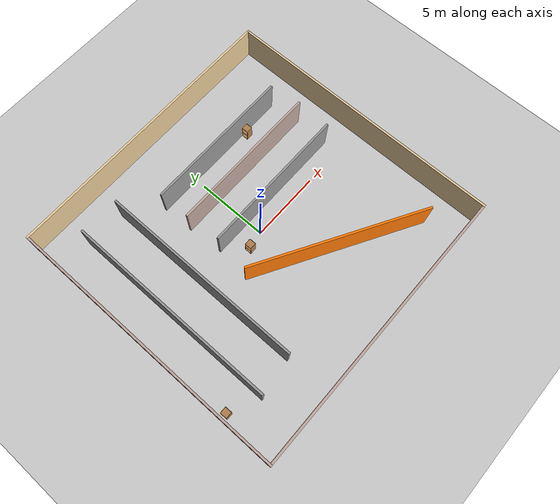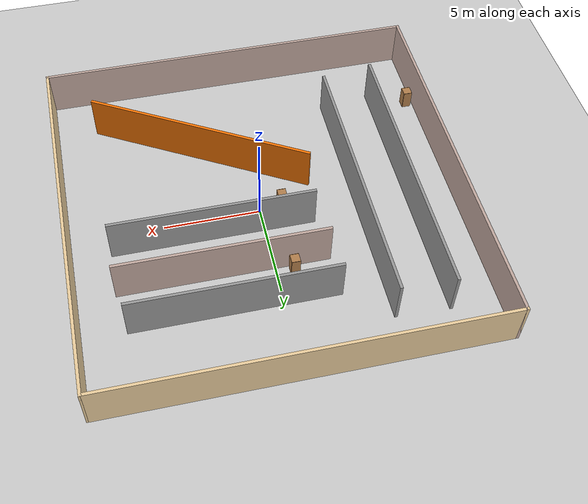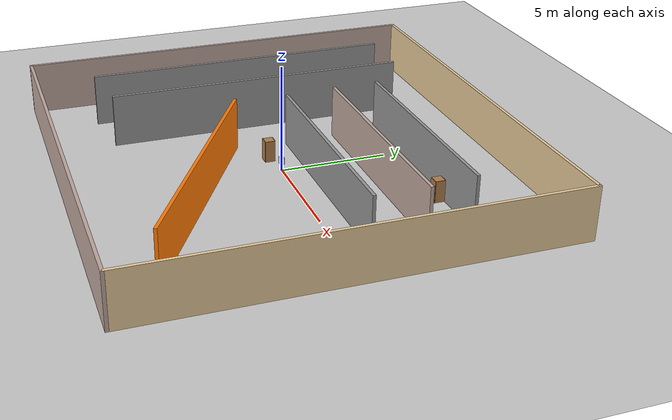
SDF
<sdf version="1.6">
 <world name="default">
  <light name="sun" type="directional">
   <pose>0 0 10 0 -0 0</pose>
   <diffuse>0.8 0.8 0.8 1</diffuse>
   <specular>0.2 0.2 0.2 1</specular>
   <attenuation>
    <range>1000</range>
    <constant>0.9</constant>
    <linear>0.01</linear>
    <quadratic>0.001</quadratic>
   </attenuation>
   <direction>-0.5 0.1 -0.9</direction>
  </light>
  <model name="animated_box">
   <pose>0 0 0.5 0 0 0</pose>
   <link name="link">
    <collision name="animated_box_collision"><geometry><box><size>0.2 0.1 0.3</size></box></geometry></collision>
    <visual name="visual"><geometry><box><size>0.2 0.1 0.3</size></box></geometry></visual>
    <inertial>
     <inertia><ixx>1</ixx><ixy>0</ixy><ixz>0</ixz><iyy>1</iyy><iyz>0</iyz><izz>1</izz></inertia>
     <mass>1</mass>
    </inertial>
    <gravity>0</gravity>
   </link>
   <plugin name="push_animate" filename="libbox_forward_movement12.so"/>
  </model>
  <model name="animated_cylinder">
   <pose>0 0 0.5 0 0 0</pose>
   <link name="link">
    <collision name="animated_cylinder_collision">
     <geometry><cylinder><radius>0.1</radius><length>0.3</length></cylinder></geometry>
    </collision>
    <visual name="visual">
     <geometry><cylinder><radius>0.1</radius><length>0.3</length></cylinder></geometry>
    </visual>
    <inertial>
     <inertia><ixx>1</ixx><ixy>0</ixy><ixz>0</ixz><iyy>1</iyy><iyz>0</iyz><izz>1</izz></inertia>
     <mass>1</mass>
    </inertial>
    <gravity>0</gravity>
   </link>
   <plugin name="push_animate2" filename="libbox_forward_movement16.so"/>
  </model>
  <model name="animated_box2">
   <pose>0 0 0.5 0 0 0</pose>
   <link name="link">
    <collision name="animated_box_collision2"><geometry><box><size>0.2 0.2 0.3</size></box></geometry></collision>
    <visual name="visual"><geometry><box><size>0.2 0.2 0.3</size></box></geometry></visual>
    <inertial>
     <inertia><ixx>1</ixx><ixy>0</ixy><ixz>0</ixz><iyy>1</iyy><iyz>0</iyz><izz>1</izz></inertia>
     <mass>1</mass>
    </inertial>
    <gravity>0</gravity>
   </link>
   <plugin name="push_animate" filename="libbox_clockwise_movement2.so"/>
  </model>
  <model name="animated_box3">
   <pose>0 0 0.5 0 0 0</pose>
   <link name="link">
    <collision name="animated_box_collision3"><geometry><box><size>0.3 0.2 0.3</size></box></geometry></collision>
    <visual name="visual"><geometry><box><size>0.3 0.2 0.3</size></box></geometry></visual>
    <inertial>
     <inertia><ixx>1</ixx><ixy>0</ixy><ixz>0</ixz><iyy>1</iyy><iyz>0</iyz><izz>1</izz></inertia>
     <mass>1</mass>
    </inertial>
    <gravity>0</gravity>
   </link>
   <plugin name="push_animate" filename="libbox_forward_movement17.so"/>
  </model>
  <model name="ground_plane">
   <static>1</static>
   <link name="link">
    <collision name="collision">
     <geometry><plane><normal>0 0 1</normal><size>100 100</size></plane></geometry>
     <surface><friction><ode><mu>100</mu><mu2>50</mu2></ode></friction></surface>
    </collision>
    <visual name="visual">
     <cast_shadows>0</cast_shadows>
     <geometry><plane><normal>0 0 1</normal><size>100 100</size></plane></geometry>
     <material>
      <script><uri>file://media/materials/scripts/gazebo.material</uri><name>Gazebo/Grey</name></script>
     </material>
    </visual>
   </link>
  </model>
  <gravity>0 0 -9.8</gravity>
  <magnetic_field>6e-06 2.3e-05 -4.2e-05</magnetic_field>
  <atmosphere type="adiabatic"/>
  <physics name="default_physics" default="0" type="ode">
   <max_step_size>0.001</max_step_size>
   <real_time_factor>1</real_time_factor>
   <real_time_update_rate>1000</real_time_update_rate>
  </physics>
  <scene><ambient>0.4 0.4 0.4 1</ambient><background>0.7 0.7 0.7 1</background><shadows>1</shadows></scene>
  <audio><device>default</device></audio>
  <spherical_coordinates>
   <surface_model>EARTH_WGS84</surface_model>
   <latitude_deg>0</latitude_deg>
   <longitude_deg>0</longitude_deg>
   <elevation>0</elevation>
   <heading_deg>0</heading_deg>
  </spherical_coordinates>
  <model name="room2">
   <pose>-0.19 0.05 0 0 -0 0</pose>
   <link name="Wall_0">
    <collision name="Wall_0_Collision">
     <geometry><box><size>19.75 0.15 2.5</size></box></geometry>
     <pose>0 0 1.25 0 -0 0</pose>
    </collision>
    <visual name="Wall_0_Visual">
     <pose>0 0 1.25 0 -0 0</pose>
     <geometry><box><size>19.75 0.15 2.5</size></box></geometry>
     <material>
      <script><uri>file://media/materials/scripts/gazebo.material</uri><name>Gazebo/Grey</name></script>
      <ambient>0.760784 0.662745 0.627451 1</ambient>
     </material>
     <meta><layer>0</layer></meta>
    </visual>
    <pose>-10.05 -0 0 0 -0 1.5708</pose>
   </link>
   <link name="Wall_11">
    <collision name="Wall_11_Collision">
     <geometry><box><size>10.5 0.15 2.5</size></box></geometry>
     <pose>0 0 1.25 0 -0 0</pose>
    </collision>
    <visual name="Wall_11_Visual">
     <pose>0 0 1.25 0 -0 0</pose>
     <geometry><box><size>10.5 0.15 2.5</size></box></geometry>
     <material>
      <script><uri>file://media/materials/scripts/gazebo.material</uri><name>Gazebo/Grey</name></script>
      <ambient>1 1 1 1</ambient>
     </material>
     <meta><layer>0</layer></meta>
    </visual>
    <pose>2.55683 5.70417 0 0 -0 0</pose>
   </link>
   <link name="Wall_13">
    <collision name="Wall_13_Collision">
     <geometry><box><size>10.75 0.15 2.5</size></box></geometry>
     <pose>0 0 1.25 0 -0 0</pose>
    </collision>
    <visual name="Wall_13_Visual">
     <pose>0 0 1.25 0 -0 0</pose>
     <geometry><box><size>10.75 0.15 2.5</size></box></geometry>
     <material>
      <script><uri>file://media/materials/scripts/gazebo.material</uri><name>Gazebo/Grey</name></script>
      <ambient>0.760784 0.662745 0.627451 1</ambient>
     </material>
     <meta><layer>0</layer></meta>
    </visual>
    <pose>2.7281 3.52989 0 0 -0 0</pose>
   </link>
   <link name="Wall_15">
    <collision name="Wall_15_Collision">
     <geometry><box><size>10.5 0.15 2.5</size></box></geometry>
     <pose>0 0 1.25 0 -0 0</pose>
    </collision>
    <visual name="Wall_15_Visual">
     <pose>0 0 1.25 0 -0 0</pose>
     <geometry><box><size>10.5 0.15 2.5</size></box></geometry>
     <material>
      <script><uri>file://media/materials/scripts/gazebo.material</uri><name>Gazebo/Grey</name></script>
      <ambient>1 1 1 1</ambient>
     </material>
     <meta><layer>0</layer></meta>
    </visual>
    <pose>2.78814 1.10118 0 0 -0 0</pose>
   </link>
   <link name="Wall_17">
    <collision name="Wall_17_Collision">
     <geometry><box><size>12.25 0.15 2.5</size></box></geometry>
     <pose>0 0 1.25 0 -0 0</pose>
    </collision>
    <visual name="Wall_17_Visual">
     <pose>0 0 1.25 0 -0 0</pose>
     <geometry><box><size>12.25 0.15 2.5</size></box></geometry>
     <material>
      <script><uri>file://media/materials/scripts/gazebo.material</uri><name>Gazebo/Grey</name></script>
      <ambient>0.996078 0.47451 0.0196078 1</ambient>
     </material>
     <meta><layer>0</layer></meta>
    </visual>
    <pose>2.5519 -4.3988 0 0 -0 -0.523599</pose>
   </link>
   <link name="Wall_2">
    <collision name="Wall_2_Collision">
     <geometry><box><size>20.25 0.15 2.5</size></box></geometry>
     <pose>0 0 1.25 0 -0 0</pose>
    </collision>
    <visual name="Wall_2_Visual">
     <pose>0 0 1.25 0 -0 0</pose>
     <geometry><box><size>20.25 0.15 2.5</size></box></geometry>
     <material>
      <script><uri>file://media/materials/scripts/gazebo.material</uri><name>Gazebo/Grey</name></script>
      <ambient>0.921569 0.807843 0.615686 1</ambient>
     </material>
     <meta><layer>0</layer></meta>
    </visual>
    <pose>0 9.8 0 0 -0 0</pose>
   </link>
   <link name="Wall_3">
    <collision name="Wall_3_Collision">
     <geometry><box><size>19.75 0.15 2.5</size></box></geometry>
     <pose>0 0 1.25 0 -0 0</pose>
    </collision>
    <visual name="Wall_3_Visual">
     <pose>0 0 1.25 0 -0 0</pose>
     <geometry><box><size>19.75 0.15 2.5</size></box></geometry>
     <material>
      <script><uri>file://media/materials/scripts/gazebo.material</uri><name>Gazebo/Grey</name></script>
      <ambient>0.921569 0.807843 0.615686 1</ambient>
     </material>
     <meta><layer>0</layer></meta>
    </visual>
    <pose>10.05 -0 0 0 -0 -1.5708</pose>
   </link>
   <link name="Wall_4">
    <collision name="Wall_4_Collision">
     <geometry><box><size>20.25 0.15 2.5</size></box></geometry>
     <pose>0 0 1.25 0 -0 0</pose>
    </collision>
    <visual name="Wall_4_Visual">
     <pose>0 0 1.25 0 -0 0</pose>
     <geometry><box><size>20.25 0.15 2.5</size></box></geometry>
     <material>
      <script><uri>file://media/materials/scripts/gazebo.material</uri><name>Gazebo/Grey</name></script>
      <ambient>0.760784 0.662745 0.627451 1</ambient>
     </material>
     <meta><layer>0</layer></meta>
    </visual>
    <pose>0 -9.8 0 0 -0 3.14159</pose>
   </link>
   <link name="Wall_6">
    <collision name="Wall_6_Collision">
     <geometry><box><size>14.75 0.15 2.5</size></box></geometry>
     <pose>0 0 1.25 0 -0 0</pose>
    </collision>
    <visual name="Wall_6_Visual">
     <pose>0 0 1.25 0 -0 0</pose>
     <geometry><box><size>14.75 0.15 2.5</size></box></geometry>
     <material>
      <script><uri>file://media/materials/scripts/gazebo.material</uri><name>Gazebo/Grey</name></script>
      <ambient>1 1 1 1</ambient>
     </material>
     <meta><layer>0</layer></meta>
    </visual>
    <pose>-7.56811 0.300879 0 0 -0 -1.5708</pose>
   </link>
   <link name="Wall_8">
    <collision name="Wall_8_Collision">
     <geometry><box><size>14.25 0.15 2.5</size></box></geometry>
     <pose>0 0 1.25 0 -0 0</pose>
    </collision>
    <visual name="Wall_8_Visual">
     <pose>0 0 1.25 0 -0 0</pose>
     <geometry><box><size>14.25 0.15 2.5</size></box></geometry>
     <material>
      <script><uri>file://media/materials/scripts/gazebo.material</uri><name>Gazebo/Grey</name></script>
      <ambient>1 1 1 1</ambient>
     </material>
     <meta><layer>0</layer></meta>
    </visual>
    <pose>-4.8387 0.435226 0 0 -0 -1.5708</pose>
   </link>
   <static>1</static>
  </model>
  <model name="cabinet">
   <static>1</static>
   <link name="cabinet_bottom_plate">
    <inertial>
     <pose>0 0 -1 0 -0 0</pose>
     <inertia><ixx>2.05</ixx><ixy>0</ixy><ixz>0</ixz><iyy>2.05</iyy><iyz>0</iyz><izz>2.05</izz></inertia>
     <mass>25</mass>
    </inertial>
    <collision name="cabinet_bottom_plate_geom">
     <pose>0 0 0.01 0 -0 0</pose>
     <geometry><box><size>0.45 0.45 0.02</size></box></geometry>
    </collision>
    <visual name="cabinet_bottom_plate_geom_visual">
     <pose>0 0 0.01 0 -0 0</pose>
     <geometry><box><size>0.45 0.45 0.02</size></box></geometry>
     <material>
      <script><uri>file://media/materials/scripts/gazebo.material</uri><name>Gazebo/Wood</name></script>
     </material>
    </visual>
    <collision name="cabinet_bottom_plate_geom_cabinet_back_plate">
     <pose>0.235 0 0.51 0 -0 0</pose>
     <geometry><box><size>0.02 0.45 1.02</size></box></geometry>
    </collision>
    <visual name="cabinet_bottom_plate_geom_cabinet_back_plate_visual">
     <pose>0.235 0 0.51 0 -0 0</pose>
     <geometry><box><size>0.02 0.45 1.02</size></box></geometry>
     <material>
      <script><uri>file://media/materials/scripts/gazebo.material</uri><name>Gazebo/Wood</name></script>
     </material>
    </visual>
    <collision name="cabinet_bottom_plate_geom_cabinet_left_plate">
     <pose>0 0.235 0.51 0 -0 0</pose>
     <geometry><box><size>0.45 0.02 1.02</size></box></geometry>
    </collision>
    <visual name="cabinet_bottom_plate_geom_cabinet_left_plate_visual">
     <pose>0 0.235 0.51 0 -0 0</pose>
     <geometry><box><size>0.45 0.02 1.02</size></box></geometry>
     <material>
      <script><uri>file://media/materials/scripts/gazebo.material</uri><name>Gazebo/Wood</name></script>
     </material>
    </visual>
    <collision name="cabinet_bottom_plate_geom_cabinet_middle_plate">
     <pose>0 0 0.51 0 -0 0</pose>
     <geometry><box><size>0.45 0.45 0.02</size></box></geometry>
    </collision>
    <visual name="cabinet_bottom_plate_geom_cabinet_middle_plate_visual">
     <pose>0 0 0.51 0 -0 0</pose>
     <geometry><box><size>0.45 0.45 0.02</size></box></geometry>
     <material>
      <script><uri>file://media/materials/scripts/gazebo.material</uri><name>Gazebo/Wood</name></script>
     </material>
    </visual>
    <collision name="cabinet_bottom_plate_geom_cabinet_right_plate">
     <pose>0 -0.235 0.51 0 -0 0</pose>
     <geometry><box><size>0.45 0.02 1.02</size></box></geometry>
    </collision>
    <visual name="cabinet_bottom_plate_geom_cabinet_right_plate_visual">
     <pose>0 -0.235 0.51 0 -0 0</pose>
     <geometry><box><size>0.45 0.02 1.02</size></box></geometry>
     <material>
      <script><uri>file://media/materials/scripts/gazebo.material</uri><name>Gazebo/Wood</name></script>
     </material>
    </visual>
    <collision name="cabinet_bottom_plate_geom_cabinet_top_plate">
     <pose>0 0 1.01 0 -0 0</pose>
     <geometry><box><size>0.45 0.45 0.02</size></box></geometry>
    </collision>
    <visual name="cabinet_bottom_plate_geom_cabinet_top_plate_visual">
     <pose>0 0 1.01 0 -0 0</pose>
     <geometry><box><size>0.45 0.45 0.02</size></box></geometry>
     <material>
      <script><uri>file://media/materials/scripts/gazebo.material</uri><name>Gazebo/Wood</name></script>
     </material>
    </visual>
   </link>
   <pose>-1.22722 -0.214526 0 0 -0 0</pose>
  </model>
  <model name="cabinet_0">
   <static>1</static>
   <link name="cabinet_bottom_plate">
    <inertial>
     <pose>0 0 -1 0 -0 0</pose>
     <inertia><ixx>2.05</ixx><ixy>0</ixy><ixz>0</ixz><iyy>2.05</iyy><iyz>0</iyz><izz>2.05</izz></inertia>
     <mass>25</mass>
    </inertial>
    <collision name="cabinet_bottom_plate_geom">
     <pose>0 0 0.01 0 -0 0</pose>
     <geometry><box><size>0.45 0.45 0.02</size></box></geometry>
    </collision>
    <visual name="cabinet_bottom_plate_geom_visual">
     <pose>0 0 0.01 0 -0 0</pose>
     <geometry><box><size>0.45 0.45 0.02</size></box></geometry>
     <material>
      <script><uri>file://media/materials/scripts/gazebo.material</uri><name>Gazebo/Wood</name></script>
     </material>
    </visual>
    <collision name="cabinet_bottom_plate_geom_cabinet_back_plate">
     <pose>0.235 0 0.51 0 -0 0</pose>
     <geometry><box><size>0.02 0.45 1.02</size></box></geometry>
    </collision>
    <visual name="cabinet_bottom_plate_geom_cabinet_back_plate_visual">
     <pose>0.235 0 0.51 0 -0 0</pose>
     <geometry><box><size>0.02 0.45 1.02</size></box></geometry>
     <material>
      <script><uri>file://media/materials/scripts/gazebo.material</uri><name>Gazebo/Wood</name></script>
     </material>
    </visual>
    <collision name="cabinet_bottom_plate_geom_cabinet_left_plate">
     <pose>0 0.235 0.51 0 -0 0</pose>
     <geometry><box><size>0.45 0.02 1.02</size></box></geometry>
    </collision>
    <visual name="cabinet_bottom_plate_geom_cabinet_left_plate_visual">
     <pose>0 0.235 0.51 0 -0 0</pose>
     <geometry><box><size>0.45 0.02 1.02</size></box></geometry>
     <material>
      <script><uri>file://media/materials/scripts/gazebo.material</uri><name>Gazebo/Wood</name></script>
     </material>
    </visual>
    <collision name="cabinet_bottom_plate_geom_cabinet_middle_plate">
     <pose>0 0 0.51 0 -0 0</pose>
     <geometry><box><size>0.45 0.45 0.02</size></box></geometry>
    </collision>
    <visual name="cabinet_bottom_plate_geom_cabinet_middle_plate_visual">
     <pose>0 0 0.51 0 -0 0</pose>
     <geometry><box><size>0.45 0.45 0.02</size></box></geometry>
     <material>
      <script><uri>file://media/materials/scripts/gazebo.material</uri><name>Gazebo/Wood</name></script>
     </material>
    </visual>
    <collision name="cabinet_bottom_plate_geom_cabinet_right_plate">
     <pose>0 -0.235 0.51 0 -0 0</pose>
     <geometry><box><size>0.45 0.02 1.02</size></box></geometry>
    </collision>
    <visual name="cabinet_bottom_plate_geom_cabinet_right_plate_visual">
     <pose>0 -0.235 0.51 0 -0 0</pose>
     <geometry><box><size>0.45 0.02 1.02</size></box></geometry>
     <material>
      <script><uri>file://media/materials/scripts/gazebo.material</uri><name>Gazebo/Wood</name></script>
     </material>
    </visual>
    <collision name="cabinet_bottom_plate_geom_cabinet_top_plate">
     <pose>0 0 1.01 0 -0 0</pose>
     <geometry><box><size>0.45 0.45 0.02</size></box></geometry>
    </collision>
    <visual name="cabinet_bottom_plate_geom_cabinet_top_plate_visual">
     <pose>0 0 1.01 0 -0 0</pose>
     <geometry><box><size>0.45 0.45 0.02</size></box></geometry>
     <material>
      <script><uri>file://media/materials/scripts/gazebo.material</uri><name>Gazebo/Wood</name></script>
     </material>
    </visual>
   </link>
   <pose>-9.78918 -5.98005 0 0 -0 0</pose>
  </model>
  <model name="cabinet_1">
   <static>1</static>
   <link name="cabinet_bottom_plate">
    <inertial>
     <pose>0 0 -1 0 -0 0</pose>
     <inertia><ixx>2.05</ixx><ixy>0</ixy><ixz>0</ixz><iyy>2.05</iyy><iyz>0</iyz><izz>2.05</izz></inertia>
     <mass>25</mass>
    </inertial>
    <collision name="cabinet_bottom_plate_geom">
     <pose>0 0 0.01 0 -0 0</pose>
     <geometry><box><size>0.45 0.45 0.02</size></box></geometry>
    </collision>
    <visual name="cabinet_bottom_plate_geom_visual">
     <pose>0 0 0.01 0 -0 0</pose>
     <geometry><box><size>0.45 0.45 0.02</size></box></geometry>
     <material>
      <script><uri>file://media/materials/scripts/gazebo.material</uri><name>Gazebo/Wood</name></script>
     </material>
    </visual>
    <collision name="cabinet_bottom_plate_geom_cabinet_back_plate">
     <pose>0.235 0 0.51 0 -0 0</pose>
     <geometry><box><size>0.02 0.45 1.02</size></box></geometry>
    </collision>
    <visual name="cabinet_bottom_plate_geom_cabinet_back_plate_visual">
     <pose>0.235 0 0.51 0 -0 0</pose>
     <geometry><box><size>0.02 0.45 1.02</size></box></geometry>
     <material>
      <script><uri>file://media/materials/scripts/gazebo.material</uri><name>Gazebo/Wood</name></script>
     </material>
    </visual>
    <collision name="cabinet_bottom_plate_geom_cabinet_left_plate">
     <pose>0 0.235 0.51 0 -0 0</pose>
     <geometry><box><size>0.45 0.02 1.02</size></box></geometry>
    </collision>
    <visual name="cabinet_bottom_plate_geom_cabinet_left_plate_visual">
     <pose>0 0.235 0.51 0 -0 0</pose>
     <geometry><box><size>0.45 0.02 1.02</size></box></geometry>
     <material>
      <script><uri>file://media/materials/scripts/gazebo.material</uri><name>Gazebo/Wood</name></script>
     </material>
    </visual>
    <collision name="cabinet_bottom_plate_geom_cabinet_middle_plate">
     <pose>0 0 0.51 0 -0 0</pose>
     <geometry><box><size>0.45 0.45 0.02</size></box></geometry>
    </collision>
    <visual name="cabinet_bottom_plate_geom_cabinet_middle_plate_visual">
     <pose>0 0 0.51 0 -0 0</pose>
     <geometry><box><size>0.45 0.45 0.02</size></box></geometry>
     <material>
      <script><uri>file://media/materials/scripts/gazebo.material</uri><name>Gazebo/Wood</name></script>
     </material>
    </visual>
    <collision name="cabinet_bottom_plate_geom_cabinet_right_plate">
     <pose>0 -0.235 0.51 0 -0 0</pose>
     <geometry><box><size>0.45 0.02 1.02</size></box></geometry>
    </collision>
    <visual name="cabinet_bottom_plate_geom_cabinet_right_plate_visual">
     <pose>0 -0.235 0.51 0 -0 0</pose>
     <geometry><box><size>0.45 0.02 1.02</size></box></geometry>
     <material>
      <script><uri>file://media/materials/scripts/gazebo.material</uri><name>Gazebo/Wood</name></script>
     </material>
    </visual>
    <collision name="cabinet_bottom_plate_geom_cabinet_top_plate">
     <pose>0 0 1.01 0 -0 0</pose>
     <geometry><box><size>0.45 0.45 0.02</size></box></geometry>
    </collision>
    <visual name="cabinet_bottom_plate_geom_cabinet_top_plate_visual">
     <pose>0 0 1.01 0 -0 0</pose>
     <geometry><box><size>0.45 0.45 0.02</size></box></geometry>
     <material>
      <script><uri>file://media/materials/scripts/gazebo.material</uri><name>Gazebo/Wood</name></script>
     </material>
    </visual>
   </link>
   <pose>4.77961 5.45145 0 0 -0 0</pose>
  </model>
  <model name="cabinet_2">
   <static>1</static>
   <link name="cabinet_bottom_plate">
    <inertial>
     <pose>0 0 -1 0 -0 0</pose>
     <inertia><ixx>2.05</ixx><ixy>0</ixy><ixz>0</ixz><iyy>2.05</iyy><iyz>0</iyz><izz>2.05</izz></inertia>
     <mass>25</mass>
    </inertial>
    <collision name="cabinet_bottom_plate_geom">
     <pose>0 0 0.01 0 -0 0</pose>
     <geometry><box><size>0.45 0.45 0.02</size></box></geometry>
    </collision>
    <visual name="cabinet_bottom_plate_geom_visual">
     <pose>0 0 0.01 0 -0 0</pose>
     <geometry><box><size>0.45 0.45 0.02</size></box></geometry>
     <material>
      <script><uri>file://media/materials/scripts/gazebo.material</uri><name>Gazebo/Wood</name></script>
     </material>
    </visual>
    <collision name="cabinet_bottom_plate_geom_cabinet_back_plate">
     <pose>0.235 0 0.51 0 -0 0</pose>
     <geometry><box><size>0.02 0.45 1.02</size></box></geometry>
    </collision>
    <visual name="cabinet_bottom_plate_geom_cabinet_back_plate_visual">
     <pose>0.235 0 0.51 0 -0 0</pose>
     <geometry><box><size>0.02 0.45 1.02</size></box></geometry>
     <material>
      <script><uri>file://media/materials/scripts/gazebo.material</uri><name>Gazebo/Wood</name></script>
     </material>
    </visual>
    <collision name="cabinet_bottom_plate_geom_cabinet_left_plate">
     <pose>0 0.235 0.51 0 -0 0</pose>
     <geometry><box><size>0.45 0.02 1.02</size></box></geometry>
    </collision>
    <visual name="cabinet_bottom_plate_geom_cabinet_left_plate_visual">
     <pose>0 0.235 0.51 0 -0 0</pose>
     <geometry><box><size>0.45 0.02 1.02</size></box></geometry>
     <material>
      <script><uri>file://media/materials/scripts/gazebo.material</uri><name>Gazebo/Wood</name></script>
     </material>
    </visual>
    <collision name="cabinet_bottom_plate_geom_cabinet_middle_plate">
     <pose>0 0 0.51 0 -0 0</pose>
     <geometry><box><size>0.45 0.45 0.02</size></box></geometry>
    </collision>
    <visual name="cabinet_bottom_plate_geom_cabinet_middle_plate_visual">
     <pose>0 0 0.51 0 -0 0</pose>
     <geometry><box><size>0.45 0.45 0.02</size></box></geometry>
     <material>
      <script><uri>file://media/materials/scripts/gazebo.material</uri><name>Gazebo/Wood</name></script>
     </material>
    </visual>
    <collision name="cabinet_bottom_plate_geom_cabinet_right_plate">
     <pose>0 -0.235 0.51 0 -0 0</pose>
     <geometry><box><size>0.45 0.02 1.02</size></box></geometry>
    </collision>
    <visual name="cabinet_bottom_plate_geom_cabinet_right_plate_visual">
     <pose>0 -0.235 0.51 0 -0 0</pose>
     <geometry><box><size>0.45 0.02 1.02</size></box></geometry>
     <material>
      <script><uri>file://media/materials/scripts/gazebo.material</uri><name>Gazebo/Wood</name></script>
     </material>
    </visual>
    <collision name="cabinet_bottom_plate_geom_cabinet_top_plate">
     <pose>0 0 1.01 0 -0 0</pose>
     <geometry><box><size>0.45 0.45 0.02</size></box></geometry>
    </collision>
    <visual name="cabinet_bottom_plate_geom_cabinet_top_plate_visual">
     <pose>0 0 1.01 0 -0 0</pose>
     <geometry><box><size>0.45 0.45 0.02</size></box></geometry>
     <material>
      <script><uri>file://media/materials/scripts/gazebo.material</uri><name>Gazebo/Wood</name></script>
     </material>
    </visual>
   </link>
   <pose>-0.937911 3.93383 0 0 -0 0</pose>
  </model>
 </world>
</sdf>
